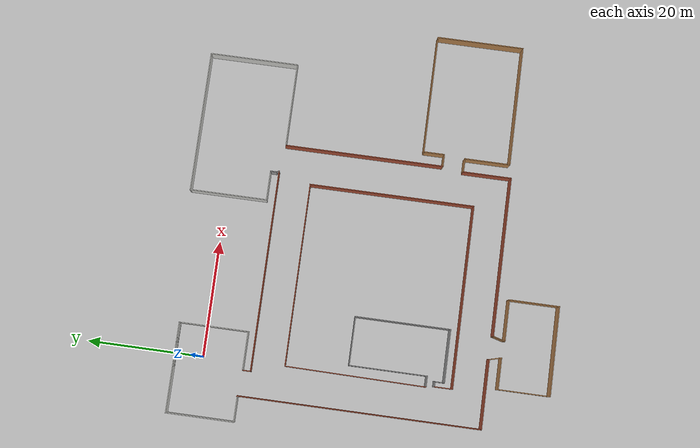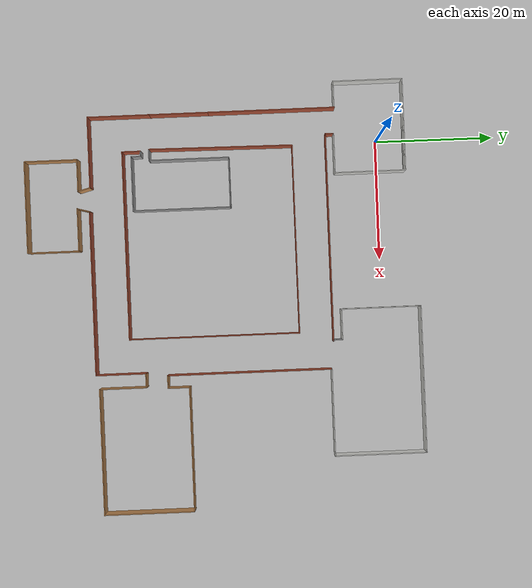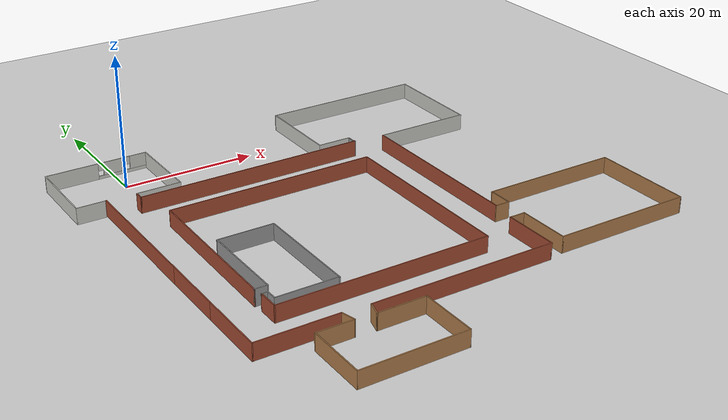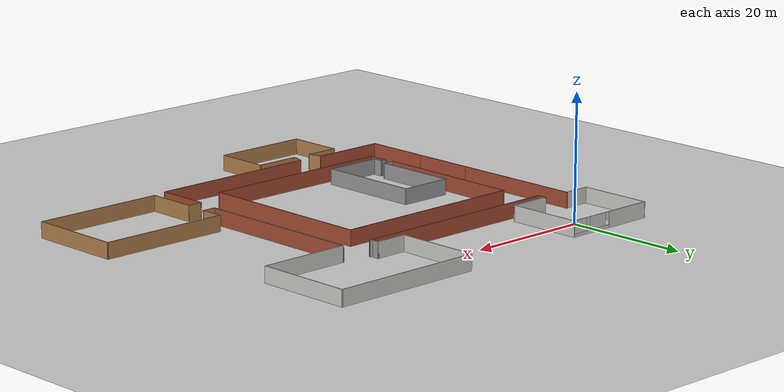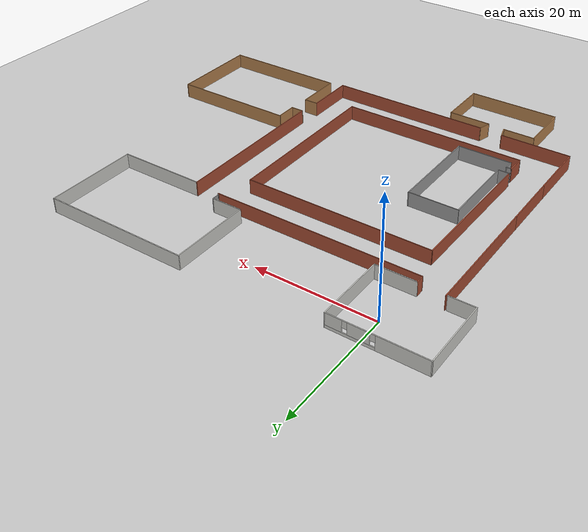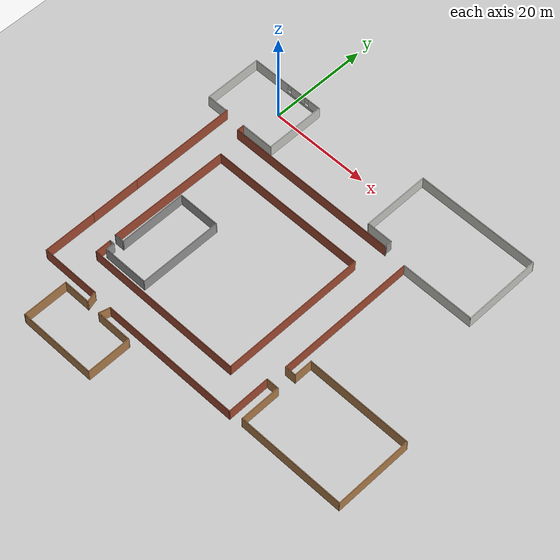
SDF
<?xml version="1.0"?>
<sdf version="1.6">
  <world name="lab_world">
    <gravity>0 0 -9.8</gravity>

    <include>
      <uri>model://ground_plane</uri>
    </include>

    <include>
      <uri>model://sun</uri>
    </include>

    <include>
      <name>lab_building</name>
      <uri>model://lab_building</uri>
    </include>
  </world>
</sdf>

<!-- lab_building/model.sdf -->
<sdf version='1.7'>
  <model name='lab_building'>
    <pose>25.4935 -26.5175 0 0 -0 0</pose>
    <link name='Wall_10'>
      <collision name='Wall_10_Collision'>
        <geometry>
          <box>
            <size>4.25 0.15 2.5</size>
          </box>
        </geometry>
        <pose>0 0 1.25 0 -0 0</pose>
      </collision>
      <visual name='Wall_10_Visual'>
        <pose>0 0 1.25 0 -0 0</pose>
        <geometry>
          <box>
            <size>4.25 0.15 2.5</size>
          </box>
        </geometry>
        <material>
          <script>
            <uri>file://media/materials/scripts/gazebo.material</uri>
            <name>Gazebo/CeilingTiled</name>
          </script>
          <ambient>1 1 1 1</ambient>
        </material>
        <meta>
          <layer>0</layer>
        </meta>
      </visual>
      <pose>-33.5705 19.5683 0 0 -0 0</pose>
    </link>
    <link name='Wall_13'>
      <collision name='Wall_13_Collision'>
        <geometry>
          <box>
            <size>6.75 0.15 2.5</size>
          </box>
        </geometry>
        <pose>0 0 1.25 0 -0 0</pose>
      </collision>
      <visual name='Wall_13_Visual'>
        <pose>0 0 1.25 0 -0 0</pose>
        <geometry>
          <box>
            <size>6.75 0.15 2.5</size>
          </box>
        </geometry>
        <material>
          <script>
            <uri>file://media/materials/scripts/gazebo.material</uri>
            <name>Gazebo/CeilingTiled</name>
          </script>
          <ambient>1 1 1 1</ambient>
        </material>
        <meta>
          <layer>0</layer>
        </meta>
      </visual>
      <pose>-23.5705 19.3183 0 0 -0 3.14159</pose>
    </link>
    <link name='Wall_14'>
      <collision name='Wall_14_Collision'>
        <geometry>
          <box>
            <size>1.5 0.15 2.5</size>
          </box>
        </geometry>
        <pose>0 0 1.25 0 -0 0</pose>
      </collision>
      <visual name='Wall_14_Visual'>
        <pose>0 0 1.25 0 -0 0</pose>
        <geometry>
          <box>
            <size>1.5 0.15 2.5</size>
          </box>
        </geometry>
        <material>
          <script>
            <uri>file://media/materials/scripts/gazebo.material</uri>
            <name>Gazebo/Bricks</name>
          </script>
          <ambient>1 1 1 1</ambient>
        </material>
        <meta>
          <layer>0</layer>
        </meta>
      </visual>
      <pose>-26.8705 18.6433 0 0 -0 -1.5708</pose>
    </link>
    <link name='Wall_15'>
      <collision name='Wall_15_Collision'>
        <geometry>
          <box>
            <size>35 0.15 2.5</size>
          </box>
        </geometry>
        <pose>0 0 1.25 0 -0 0</pose>
      </collision>
      <visual name='Wall_15_Visual'>
        <pose>0 0 1.25 0 -0 0</pose>
        <geometry>
          <box>
            <size>35 0.15 2.5</size>
          </box>
        </geometry>
        <material>
          <script>
            <uri>file://media/materials/scripts/gazebo.material</uri>
            <name>Gazebo/Bricks</name>
          </script>
          <ambient>1 1 1 1</ambient>
        </material>
        <meta>
          <layer>0</layer>
        </meta>
      </visual>
      <pose>-9.44554 17.9683 0 0 -0 0</pose>
    </link>
    <link name='Wall_17'>
      <collision name='Wall_17_Collision'>
        <geometry>
          <box>
            <size>21.5 0.15 2.5</size>
          </box>
        </geometry>
        <pose>0 0 1.25 0 -0 0</pose>
      </collision>
      <visual name='Wall_17_Visual'>
        <pose>0 0 1.25 0 -0 0</pose>
        <geometry>
          <box>
            <size>21.5 0.15 2.5</size>
          </box>
        </geometry>
        <material>
          <script>
            <uri>file://media/materials/scripts/gazebo.material</uri>
            <name>Gazebo/Bricks</name>
          </script>
          <ambient>1 1 1 1</ambient>
        </material>
        <meta>
          <layer>0</layer>
        </meta>
      </visual>
      <pose>-31.2665 8.96422 0 0 -0 -1.5708</pose>
    </link>
    <link name='Wall_18'>
      <collision name='Wall_18_Collision'>
        <geometry>
          <box>
            <size>10 0.15 2.5</size>
          </box>
        </geometry>
        <pose>0 0 1.25 0 -0 0</pose>
      </collision>
      <visual name='Wall_18_Visual'>
        <pose>0 0 1.25 0 -0 0</pose>
        <geometry>
          <box>
            <size>10 0.15 2.5</size>
          </box>
        </geometry>
        <material>
          <script>
            <uri>file://media/materials/scripts/gazebo.material</uri>
            <name>Gazebo/Bricks</name>
          </script>
          <ambient>1 1 1 1</ambient>
        </material>
        <meta>
          <layer>0</layer>
        </meta>
      </visual>
      <pose>-31.2665 -6.63578 0 0 -0 -1.5708</pose>
    </link>
    <link name='Wall_19'>
      <collision name='Wall_19_Collision'>
        <geometry>
          <box>
            <size>10.5 0.15 2.5</size>
          </box>
        </geometry>
        <pose>0 0 1.25 0 -0 0</pose>
      </collision>
      <visual name='Wall_19_Visual'>
        <pose>0 0 1.25 0 -0 0</pose>
        <geometry>
          <box>
            <size>10.5 0.15 2.5</size>
          </box>
        </geometry>
        <material>
          <script>
            <uri>file://media/materials/scripts/gazebo.material</uri>
            <name>Gazebo/Bricks</name>
          </script>
          <ambient>1 1 1 1</ambient>
        </material>
        <meta>
          <layer>0</layer>
        </meta>
      </visual>
      <pose>-31.2665 -16.7358 0 0 -0 -1.5708</pose>
    </link>
    <link name='Wall_20'>
      <collision name='Wall_20_Collision'>
        <geometry>
          <box>
            <size>12 0.15 2.5</size>
          </box>
        </geometry>
        <pose>0 0 1.25 0 -0 0</pose>
      </collision>
      <visual name='Wall_20_Visual'>
        <pose>0 0 1.25 0 -0 0</pose>
        <geometry>
          <box>
            <size>12 0.15 2.5</size>
          </box>
        </geometry>
        <material>
          <script>
            <uri>file://media/materials/scripts/gazebo.material</uri>
            <name>Gazebo/Bricks</name>
          </script>
          <ambient>1 1 1 1</ambient>
        </material>
        <meta>
          <layer>0</layer>
        </meta>
      </visual>
      <pose>-25.3415 -21.9108 0 0 -0 0</pose>
    </link>
    <link name='Wall_21'>
      <collision name='Wall_21_Collision'>
        <geometry>
          <box>
            <size>2.25 0.15 2.5</size>
          </box>
        </geometry>
        <pose>0 0 1.25 0 -0 0</pose>
      </collision>
      <visual name='Wall_21_Visual'>
        <pose>0 0 1.25 0 -0 0</pose>
        <geometry>
          <box>
            <size>2.25 0.15 2.5</size>
          </box>
        </geometry>
        <material>
          <script>
            <uri>file://media/materials/scripts/gazebo.material</uri>
            <name>Gazebo/Wood</name>
          </script>
          <ambient>1 1 1 1</ambient>
        </material>
        <meta>
          <layer>0</layer>
        </meta>
      </visual>
      <pose>-19.1447 -22.925 0 0 -0 -1.309</pose>
    </link>
    <link name='Wall_22'>
      <collision name='Wall_22_Collision'>
        <geometry>
          <box>
            <size>5.5 0.15 2.5</size>
          </box>
        </geometry>
        <pose>0 0 1.25 0 -0 0</pose>
      </collision>
      <visual name='Wall_22_Visual'>
        <pose>0 0 1.25 0 -0 0</pose>
        <geometry>
          <box>
            <size>5.5 0.15 2.5</size>
          </box>
        </geometry>
        <material>
          <script>
            <uri>file://media/materials/scripts/gazebo.material</uri>
            <name>Gazebo/Wood</name>
          </script>
          <ambient>1 1 1 1</ambient>
        </material>
        <meta>
          <layer>0</layer>
        </meta>
      </visual>
      <pose>-21.548 -23.9392 0 0 -0 3.14159</pose>
    </link>
    <link name='Wall_23'>
      <collision name='Wall_23_Collision'>
        <geometry>
          <box>
            <size>9 0.15 2.5</size>
          </box>
        </geometry>
        <pose>0 0 1.25 0 -0 0</pose>
      </collision>
      <visual name='Wall_23_Visual'>
        <pose>0 0 1.25 0 -0 0</pose>
        <geometry>
          <box>
            <size>9 0.15 2.5</size>
          </box>
        </geometry>
        <material>
          <script>
            <uri>file://media/materials/scripts/gazebo.material</uri>
            <name>Gazebo/Wood</name>
          </script>
          <ambient>1 1 1 1</ambient>
        </material>
        <meta>
          <layer>0</layer>
        </meta>
      </visual>
      <pose>-24.223 -28.3642 0 0 -0 -1.5708</pose>
    </link>
    <link name='Wall_24'>
      <collision name='Wall_24_Collision'>
        <geometry>
          <box>
            <size>15.5 0.15 2.5</size>
          </box>
        </geometry>
        <pose>0 0 1.25 0 -0 0</pose>
      </collision>
      <visual name='Wall_24_Visual'>
        <pose>0 0 1.25 0 -0 0</pose>
        <geometry>
          <box>
            <size>15.5 0.15 2.5</size>
          </box>
        </geometry>
        <material>
          <script>
            <uri>file://media/materials/scripts/gazebo.material</uri>
            <name>Gazebo/Wood</name>
          </script>
          <ambient>1 1 1 1</ambient>
        </material>
        <meta>
          <layer>0</layer>
        </meta>
      </visual>
      <pose>-16.548 -32.7892 0 0 -0 0</pose>
    </link>
    <link name='Wall_25'>
      <collision name='Wall_25_Collision'>
        <geometry>
          <box>
            <size>8.75 0.15 2.5</size>
          </box>
        </geometry>
        <pose>0 0 1.25 0 -0 0</pose>
      </collision>
      <visual name='Wall_25_Visual'>
        <pose>0 0 1.25 0 -0 0</pose>
        <geometry>
          <box>
            <size>8.75 0.15 2.5</size>
          </box>
        </geometry>
        <material>
          <script>
            <uri>file://media/materials/scripts/gazebo.material</uri>
            <name>Gazebo/Wood</name>
          </script>
          <ambient>1 1 1 1</ambient>
        </material>
        <meta>
          <layer>0</layer>
        </meta>
      </visual>
      <pose>-8.87298 -28.4892 0 0 -0 1.5708</pose>
    </link>
    <link name='Wall_3'>
      <pose>-27.9455 31.1683 0 0 -0 0</pose>
      <visual name='Wall_3_Visual_0'>
        <pose>-3.78332 0 1.25 0 -0 0</pose>
        <geometry>
          <box>
            <size>7.93335 0.15 2.5</size>
          </box>
        </geometry>
        <material>
          <script>
            <uri>file://media/materials/scripts/gazebo.material</uri>
            <name>Gazebo/CeilingTiled</name>
          </script>
          <ambient>1 1 1 1</ambient>
        </material>
        <meta>
          <layer>0</layer>
        </meta>
      </visual>
      <collision name='Wall_3_Collision_0'>
        <geometry>
          <box>
            <size>7.93335 0.15 2.5</size>
          </box>
        </geometry>
        <pose>-3.78332 0 1.25 0 -0 0</pose>
      </collision>
      <visual name='Wall_3_Visual_1'>
        <pose>3.96668 0 0.25 0 -0 0</pose>
        <geometry>
          <box>
            <size>7.56665 0.15 0.5</size>
          </box>
        </geometry>
        <material>
          <script>
            <uri>file://media/materials/scripts/gazebo.material</uri>
            <name>Gazebo/CeilingTiled</name>
          </script>
          <ambient>1 1 1 1</ambient>
        </material>
        <meta>
          <layer>0</layer>
        </meta>
      </visual>
      <collision name='Wall_3_Collision_1'>
        <geometry>
          <box>
            <size>7.56665 0.15 0.5</size>
          </box>
        </geometry>
        <pose>3.96668 0 0.25 0 -0 0</pose>
      </collision>
      <visual name='Wall_3_Visual_2'>
        <pose>2.63653 0 1.5 0 -0 0</pose>
        <geometry>
          <box>
            <size>3.30636 0.15 2</size>
          </box>
        </geometry>
        <material>
          <script>
            <uri>file://media/materials/scripts/gazebo.material</uri>
            <name>Gazebo/CeilingTiled</name>
          </script>
          <ambient>1 1 1 1</ambient>
        </material>
        <meta>
          <layer>0</layer>
        </meta>
      </visual>
      <collision name='Wall_3_Collision_2'>
        <geometry>
          <box>
            <size>3.30636 0.15 2</size>
          </box>
        </geometry>
        <pose>2.63653 0 1.5 0 -0 0</pose>
      </collision>
      <visual name='Wall_3_Visual_3'>
        <pose>6.41986 0 1.5 0 -0 0</pose>
        <geometry>
          <box>
            <size>2.66029 0.15 2</size>
          </box>
        </geometry>
        <material>
          <script>
            <uri>file://media/materials/scripts/gazebo.material</uri>
            <name>Gazebo/CeilingTiled</name>
          </script>
          <ambient>1 1 1 1</ambient>
        </material>
        <meta>
          <layer>0</layer>
        </meta>
      </visual>
      <collision name='Wall_3_Collision_3'>
        <geometry>
          <box>
            <size>2.66029 0.15 2</size>
          </box>
        </geometry>
        <pose>6.41986 0 1.5 0 -0 0</pose>
      </collision>
      <visual name='Wall_3_Visual_4'>
        <pose>0.583351 0 1.9 0 -0 0</pose>
        <geometry>
          <box>
            <size>0.8 0.15 1.2</size>
          </box>
        </geometry>
        <material>
          <script>
            <uri>file://media/materials/scripts/gazebo.material</uri>
            <name>Gazebo/CeilingTiled</name>
          </script>
          <ambient>1 1 1 1</ambient>
        </material>
        <meta>
          <layer>0</layer>
        </meta>
      </visual>
      <collision name='Wall_3_Collision_4'>
        <geometry>
          <box>
            <size>0.8 0.15 1.2</size>
          </box>
        </geometry>
        <pose>0.583351 0 1.9 0 -0 0</pose>
      </collision>
      <visual name='Wall_3_Visual_5'>
        <pose>4.68971 0 1.9 0 -0 0</pose>
        <geometry>
          <box>
            <size>0.8 0.15 1.2</size>
          </box>
        </geometry>
        <material>
          <script>
            <uri>file://media/materials/scripts/gazebo.material</uri>
            <name>Gazebo/CeilingTiled</name>
          </script>
          <ambient>1 1 1 1</ambient>
        </material>
        <meta>
          <layer>0</layer>
        </meta>
      </visual>
      <collision name='Wall_3_Collision_5'>
        <geometry>
          <box>
            <size>0.8 0.15 1.2</size>
          </box>
        </geometry>
        <pose>4.68971 0 1.9 0 -0 0</pose>
      </collision>
    </link>
    <link name='Wall_4'>
      <collision name='Wall_4_Collision'>
        <geometry>
          <box>
            <size>12 0.15 2.5</size>
          </box>
        </geometry>
        <pose>0 0 1.25 0 -0 0</pose>
      </collision>
      <visual name='Wall_4_Visual'>
        <pose>0 0 1.25 0 -0 0</pose>
        <geometry>
          <box>
            <size>12 0.15 2.5</size>
          </box>
        </geometry>
        <material>
          <script>
            <uri>file://media/materials/scripts/gazebo.material</uri>
            <name>Gazebo/CeilingTiled</name>
          </script>
          <ambient>1 1 1 1</ambient>
        </material>
        <meta>
          <layer>0</layer>
        </meta>
      </visual>
      <pose>-20.2705 25.2433 0 0 -0 -1.5708</pose>
    </link>
    <link name='Wall_59'>
      <collision name='Wall_59_Collision'>
        <geometry>
          <box>
            <size>7.25 0.15 2.5</size>
          </box>
        </geometry>
        <pose>0 0 1.25 0 -0 0</pose>
      </collision>
      <visual name='Wall_59_Visual'>
        <pose>0 0 1.25 0 -0 0</pose>
        <geometry>
          <box>
            <size>7.25 0.15 2.5</size>
          </box>
        </geometry>
        <material>
          <script>
            <uri>file://media/materials/scripts/gazebo.material</uri>
            <name>Gazebo/Wood</name>
          </script>
          <ambient>1 1 1 1</ambient>
        </material>
        <meta>
          <layer>0</layer>
        </meta>
      </visual>
      <pose>-12.423 -24.1892 0 0 -0 3.14159</pose>
    </link>
    <link name='Wall_60'>
      <collision name='Wall_60_Collision'>
        <geometry>
          <box>
            <size>2.25 0.15 2.5</size>
          </box>
        </geometry>
        <pose>0 0 1.25 0 -0 0</pose>
      </collision>
      <visual name='Wall_60_Visual'>
        <pose>0 0 1.25 0 -0 0</pose>
        <geometry>
          <box>
            <size>2.25 0.15 2.5</size>
          </box>
        </geometry>
        <material>
          <script>
            <uri>file://media/materials/scripts/gazebo.material</uri>
            <name>Gazebo/Wood</name>
          </script>
          <ambient>1 1 1 1</ambient>
        </material>
        <meta>
          <layer>0</layer>
        </meta>
      </visual>
      <pose>-15.7012 -23.175 0 0 -0 1.309</pose>
    </link>
    <link name='Wall_61'>
      <collision name='Wall_61_Collision'>
        <geometry>
          <box>
            <size>27.75 0.15 2.5</size>
          </box>
        </geometry>
        <pose>0 0 1.25 0 -0 0</pose>
      </collision>
      <visual name='Wall_61_Visual'>
        <pose>0 0 1.25 0 -0 0</pose>
        <geometry>
          <box>
            <size>27.75 0.15 2.5</size>
          </box>
        </geometry>
        <material>
          <script>
            <uri>file://media/materials/scripts/gazebo.material</uri>
            <name>Gazebo/Bricks</name>
          </script>
          <ambient>1 1 1 1</ambient>
        </material>
        <meta>
          <layer>0</layer>
        </meta>
      </visual>
      <pose>-1.62946 -22.1608 0 0 -0 0</pose>
    </link>
    <link name='Wall_62'>
      <collision name='Wall_62_Collision'>
        <geometry>
          <box>
            <size>8.5 0.15 2.5</size>
          </box>
        </geometry>
        <pose>0 0 1.25 0 -0 0</pose>
      </collision>
      <visual name='Wall_62_Visual'>
        <pose>0 0 1.25 0 -0 0</pose>
        <geometry>
          <box>
            <size>8.5 0.15 2.5</size>
          </box>
        </geometry>
        <material>
          <script>
            <uri>file://media/materials/scripts/gazebo.material</uri>
            <name>Gazebo/Bricks</name>
          </script>
          <ambient>1 1 1 1</ambient>
        </material>
        <meta>
          <layer>0</layer>
        </meta>
      </visual>
      <pose>12.1705 -17.9858 0 0 -0 1.5708</pose>
    </link>
    <link name='Wall_63'>
      <collision name='Wall_63_Collision'>
        <geometry>
          <box>
            <size>2.5 0.15 2.5</size>
          </box>
        </geometry>
        <pose>0 0 1.25 0 -0 0</pose>
      </collision>
      <visual name='Wall_63_Visual'>
        <pose>0 0 1.25 0 -0 0</pose>
        <geometry>
          <box>
            <size>2.5 0.15 2.5</size>
          </box>
        </geometry>
        <material>
          <script>
            <uri>file://media/materials/scripts/gazebo.material</uri>
            <name>Gazebo/Wood</name>
          </script>
          <ambient>1 1 1 1</ambient>
        </material>
        <meta>
          <layer>0</layer>
        </meta>
      </visual>
      <pose>13.3455 -13.8108 0 0 -0 0</pose>
    </link>
    <link name='Wall_64'>
      <collision name='Wall_64_Collision'>
        <geometry>
          <box>
            <size>8 0.15 2.5</size>
          </box>
        </geometry>
        <pose>0 0 1.25 0 -0 0</pose>
      </collision>
      <visual name='Wall_64_Visual'>
        <pose>0 0 1.25 0 -0 0</pose>
        <geometry>
          <box>
            <size>8 0.15 2.5</size>
          </box>
        </geometry>
        <material>
          <script>
            <uri>file://media/materials/scripts/gazebo.material</uri>
            <name>Gazebo/Wood</name>
          </script>
          <ambient>1 1 1 1</ambient>
        </material>
        <meta>
          <layer>0</layer>
        </meta>
      </visual>
      <pose>14.5205 -17.7358 0 0 -0 -1.5708</pose>
    </link>
    <link name='Wall_65'>
      <collision name='Wall_65_Collision'>
        <geometry>
          <box>
            <size>21.25 0.15 2.5</size>
          </box>
        </geometry>
        <pose>0 0 1.25 0 -0 0</pose>
      </collision>
      <visual name='Wall_65_Visual'>
        <pose>0 0 1.25 0 -0 0</pose>
        <geometry>
          <box>
            <size>21.25 0.15 2.5</size>
          </box>
        </geometry>
        <material>
          <script>
            <uri>file://media/materials/scripts/gazebo.material</uri>
            <name>Gazebo/Wood</name>
          </script>
          <ambient>1 1 1 1</ambient>
        </material>
        <meta>
          <layer>0</layer>
        </meta>
      </visual>
      <pose>25.0705 -21.6608 0 0 -0 0</pose>
    </link>
    <link name='Wall_66'>
      <collision name='Wall_66_Collision'>
        <geometry>
          <box>
            <size>15.25 0.15 2.5</size>
          </box>
        </geometry>
        <pose>0 0 1.25 0 -0 0</pose>
      </collision>
      <visual name='Wall_66_Visual'>
        <pose>0 0 1.25 0 -0 0</pose>
        <geometry>
          <box>
            <size>15.25 0.15 2.5</size>
          </box>
        </geometry>
        <material>
          <script>
            <uri>file://media/materials/scripts/gazebo.material</uri>
            <name>Gazebo/Wood</name>
          </script>
          <ambient>1 1 1 1</ambient>
        </material>
        <meta>
          <layer>0</layer>
        </meta>
      </visual>
      <pose>35.6205 -14.1108 0 0 -0 1.5708</pose>
    </link>
    <link name='Wall_67'>
      <collision name='Wall_67_Collision'>
        <geometry>
          <box>
            <size>21 0.15 2.5</size>
          </box>
        </geometry>
        <pose>0 0 1.25 0 -0 0</pose>
      </collision>
      <visual name='Wall_67_Visual'>
        <pose>0 0 1.25 0 -0 0</pose>
        <geometry>
          <box>
            <size>21 0.15 2.5</size>
          </box>
        </geometry>
        <material>
          <script>
            <uri>file://media/materials/scripts/gazebo.material</uri>
            <name>Gazebo/Wood</name>
          </script>
          <ambient>1 1 1 1</ambient>
        </material>
        <meta>
          <layer>0</layer>
        </meta>
      </visual>
      <pose>25.1955 -6.56078 0 0 -0 3.14159</pose>
    </link>
    <link name='Wall_68'>
      <collision name='Wall_68_Collision'>
        <geometry>
          <box>
            <size>3.75 0.15 2.5</size>
          </box>
        </geometry>
        <pose>0 0 1.25 0 -0 0</pose>
      </collision>
      <visual name='Wall_68_Visual'>
        <pose>0 0 1.25 0 -0 0</pose>
        <geometry>
          <box>
            <size>3.75 0.15 2.5</size>
          </box>
        </geometry>
        <material>
          <script>
            <uri>file://media/materials/scripts/gazebo.material</uri>
            <name>Gazebo/Wood</name>
          </script>
          <ambient>1 1 1 1</ambient>
        </material>
        <meta>
          <layer>0</layer>
        </meta>
      </visual>
      <pose>14.7705 -8.36078 0 0 -0 -1.5708</pose>
    </link>
    <link name='Wall_69'>
      <collision name='Wall_69_Collision'>
        <geometry>
          <box>
            <size>2.25 0.15 2.5</size>
          </box>
        </geometry>
        <pose>0 0 1.25 0 -0 0</pose>
      </collision>
      <visual name='Wall_69_Visual'>
        <pose>0 0 1.25 0 -0 0</pose>
        <geometry>
          <box>
            <size>2.25 0.15 2.5</size>
          </box>
        </geometry>
        <material>
          <script>
            <uri>file://media/materials/scripts/gazebo.material</uri>
            <name>Gazebo/Wood</name>
          </script>
          <ambient>1 1 1 1</ambient>
        </material>
        <meta>
          <layer>0</layer>
        </meta>
      </visual>
      <pose>13.7205 -10.1608 0 0 -0 3.14159</pose>
    </link>
    <link name='Wall_70'>
      <collision name='Wall_70_Collision'>
        <geometry>
          <box>
            <size>27.75 0.15 2.5</size>
          </box>
        </geometry>
        <pose>0 0 1.25 0 -0 0</pose>
      </collision>
      <visual name='Wall_70_Visual'>
        <pose>0 0 1.25 0 -0 0</pose>
        <geometry>
          <box>
            <size>27.75 0.15 2.5</size>
          </box>
        </geometry>
        <material>
          <script>
            <uri>file://media/materials/scripts/gazebo.material</uri>
            <name>Gazebo/Bricks</name>
          </script>
          <ambient>1 1 1 1</ambient>
        </material>
        <meta>
          <layer>0</layer>
        </meta>
      </visual>
      <pose>12.6705 3.63922 0 0 -0 1.5708</pose>
    </link>
    <link name='Wall_71'>
      <collision name='Wall_71_Collision'>
        <geometry>
          <box>
            <size>14.75 0.15 2.5</size>
          </box>
        </geometry>
        <pose>0 0 1.25 0 -0 0</pose>
      </collision>
      <visual name='Wall_71_Visual'>
        <pose>0 0 1.25 0 -0 0</pose>
        <geometry>
          <box>
            <size>14.75 0.15 2.5</size>
          </box>
        </geometry>
        <material>
          <script>
            <uri>file://media/materials/scripts/gazebo.material</uri>
            <name>Gazebo/CeilingTiled</name>
          </script>
          <ambient>1 1 1 1</ambient>
        </material>
        <meta>
          <layer>0</layer>
        </meta>
      </visual>
      <pose>19.9705 17.4392 0 0 -0 0</pose>
    </link>
    <link name='Wall_72'>
      <collision name='Wall_72_Collision'>
        <geometry>
          <box>
            <size>15.5 0.15 2.5</size>
          </box>
        </geometry>
        <pose>0 0 1.25 0 -0 0</pose>
      </collision>
      <visual name='Wall_72_Visual'>
        <pose>0 0 1.25 0 -0 0</pose>
        <geometry>
          <box>
            <size>15.5 0.15 2.5</size>
          </box>
        </geometry>
        <material>
          <script>
            <uri>file://media/materials/scripts/gazebo.material</uri>
            <name>Gazebo/CeilingTiled</name>
          </script>
          <ambient>1 1 1 1</ambient>
        </material>
        <meta>
          <layer>0</layer>
        </meta>
      </visual>
      <pose>27.2705 25.1142 0 0 -0 1.5708</pose>
    </link>
    <link name='Wall_73'>
      <collision name='Wall_73_Collision'>
        <geometry>
          <box>
            <size>24.75 0.15 2.5</size>
          </box>
        </geometry>
        <pose>0 0 1.25 0 -0 0</pose>
      </collision>
      <visual name='Wall_73_Visual'>
        <pose>0 0 1.25 0 -0 0</pose>
        <geometry>
          <box>
            <size>24.75 0.15 2.5</size>
          </box>
        </geometry>
        <material>
          <script>
            <uri>file://media/materials/scripts/gazebo.material</uri>
            <name>Gazebo/CeilingTiled</name>
          </script>
          <ambient>1 1 1 1</ambient>
        </material>
        <meta>
          <layer>0</layer>
        </meta>
      </visual>
      <pose>14.9705 32.7892 0 0 -0 3.14159</pose>
    </link>
    <link name='Wall_74'>
      <collision name='Wall_74_Collision'>
        <geometry>
          <box>
            <size>13.5 0.15 2.5</size>
          </box>
        </geometry>
        <pose>0 0 1.25 0 -0 0</pose>
      </collision>
      <visual name='Wall_74_Visual'>
        <pose>0 0 1.25 0 -0 0</pose>
        <geometry>
          <box>
            <size>13.5 0.15 2.5</size>
          </box>
        </geometry>
        <material>
          <script>
            <uri>file://media/materials/scripts/gazebo.material</uri>
            <name>Gazebo/CeilingTiled</name>
          </script>
          <ambient>1 1 1 1</ambient>
        </material>
        <meta>
          <layer>0</layer>
        </meta>
      </visual>
      <pose>2.67054 26.1142 0 0 -0 -1.5708</pose>
    </link>
    <link name='Wall_75'>
      <collision name='Wall_75_Collision'>
        <geometry>
          <box>
            <size>5.25 0.15 2.5</size>
          </box>
        </geometry>
        <pose>0 0 1.25 0 -0 0</pose>
      </collision>
      <visual name='Wall_75_Visual'>
        <pose>0 0 1.25 0 -0 0</pose>
        <geometry>
          <box>
            <size>5.25 0.15 2.5</size>
          </box>
        </geometry>
        <material>
          <script>
            <uri>file://media/materials/scripts/gazebo.material</uri>
            <name>Gazebo/CeilingTiled</name>
          </script>
          <ambient>1 1 1 1</ambient>
        </material>
        <meta>
          <layer>0</layer>
        </meta>
      </visual>
      <pose>5.22054 19.4392 0 0 -0 0</pose>
    </link>
    <link name='Wall_76'>
      <collision name='Wall_76_Collision'>
        <geometry>
          <box>
            <size>1.25 0.15 2.5</size>
          </box>
        </geometry>
        <pose>0 0 1.25 0 -0 0</pose>
      </collision>
      <visual name='Wall_76_Visual'>
        <pose>0 0 1.25 0 -0 0</pose>
        <geometry>
          <box>
            <size>1.25 0.15 2.5</size>
          </box>
        </geometry>
        <material>
          <script>
            <uri>file://media/materials/scripts/gazebo.material</uri>
            <name>Gazebo/Grey</name>
          </script>
          <ambient>1 1 1 1</ambient>
        </material>
        <meta>
          <layer>0</layer>
        </meta>
      </visual>
      <pose>7.77054 18.8892 0 0 -0 -1.5708</pose>
    </link>
    <link name='Wall_77'>
      <collision name='Wall_77_Collision'>
        <geometry>
          <box>
            <size>0.57575 0.15 2.5</size>
          </box>
        </geometry>
        <pose>0 0 1.25 0 -0 0</pose>
      </collision>
      <visual name='Wall_77_Visual'>
        <pose>0 0 1.25 0 -0 0</pose>
        <geometry>
          <box>
            <size>0.57575 0.15 2.5</size>
          </box>
        </geometry>
        <material>
          <script>
            <uri>file://media/materials/scripts/gazebo.material</uri>
            <name>Gazebo/Grey</name>
          </script>
          <ambient>1 1 1 1</ambient>
        </material>
        <meta>
          <layer>0</layer>
        </meta>
      </visual>
      <pose>7.875 18.1537 0 0 -0 -1.05789</pose>
    </link>
    <link name='Wall_79'>
      <collision name='Wall_79_Collision'>
        <geometry>
          <box>
            <size>31.75 0.15 2.5</size>
          </box>
        </geometry>
        <pose>0 0 1.25 0 -0 0</pose>
      </collision>
      <visual name='Wall_79_Visual'>
        <pose>0 0 1.25 0 -0 0</pose>
        <geometry>
          <box>
            <size>31.75 0.15 2.5</size>
          </box>
        </geometry>
        <material>
          <script>
            <uri>file://media/materials/scripts/gazebo.material</uri>
            <name>Gazebo/Bricks</name>
          </script>
          <ambient>1 1 1 1</ambient>
        </material>
        <meta>
          <layer>0</layer>
        </meta>
      </visual>
      <pose>-9.4099 12.2887 0 0 -0 0</pose>
    </link>
    <link name='Wall_80'>
      <collision name='Wall_80_Collision'>
        <geometry>
          <box>
            <size>28.75 0.15 2.5</size>
          </box>
        </geometry>
        <pose>0 0 1.25 0 -0 0</pose>
      </collision>
      <visual name='Wall_80_Visual'>
        <pose>0 0 1.25 0 -0 0</pose>
        <geometry>
          <box>
            <size>28.75 0.15 2.5</size>
          </box>
        </geometry>
        <material>
          <script>
            <uri>file://media/materials/scripts/gazebo.material</uri>
            <name>Gazebo/Bricks</name>
          </script>
          <ambient>1 1 1 1</ambient>
        </material>
        <meta>
          <layer>0</layer>
        </meta>
      </visual>
      <pose>6.39009 -2.01131 0 0 -0 -1.5708</pose>
    </link>
    <link name='Wall_81'>
      <collision name='Wall_81_Collision'>
        <geometry>
          <box>
            <size>31.75 0.15 2.5</size>
          </box>
        </geometry>
        <pose>0 0 1.25 0 -0 0</pose>
      </collision>
      <visual name='Wall_81_Visual'>
        <pose>0 0 1.25 0 -0 0</pose>
        <geometry>
          <box>
            <size>31.75 0.15 2.5</size>
          </box>
        </geometry>
        <material>
          <script>
            <uri>file://media/materials/scripts/gazebo.material</uri>
            <name>Gazebo/Bricks</name>
          </script>
          <ambient>1 1 1 1</ambient>
        </material>
        <meta>
          <layer>0</layer>
        </meta>
      </visual>
      <pose>-9.4099 -16.3113 0 0 -0 3.14159</pose>
    </link>
    <link name='Wall_82'>
      <collision name='Wall_82_Collision'>
        <geometry>
          <box>
            <size>3.25 0.15 2.5</size>
          </box>
        </geometry>
        <pose>0 0 1.25 0 -0 0</pose>
      </collision>
      <visual name='Wall_82_Visual'>
        <pose>0 0 1.25 0 -0 0</pose>
        <geometry>
          <box>
            <size>3.25 0.15 2.5</size>
          </box>
        </geometry>
        <material>
          <script>
            <uri>file://media/materials/scripts/gazebo.material</uri>
            <name>Gazebo/Bricks</name>
          </script>
          <ambient>1 1 1 1</ambient>
        </material>
        <meta>
          <layer>0</layer>
        </meta>
      </visual>
      <pose>-25.2099 -14.7613 0 0 -0 1.5708</pose>
    </link>
    <link name='Wall_83'>
      <collision name='Wall_83_Collision'>
        <geometry>
          <box>
            <size>1 0.15 2.5</size>
          </box>
        </geometry>
        <pose>0 0 1.25 0 -0 0</pose>
      </collision>
      <visual name='Wall_83_Visual'>
        <pose>0 0 1.25 0 -0 0</pose>
        <geometry>
          <box>
            <size>1 0.15 2.5</size>
          </box>
        </geometry>
        <material>
          <script>
            <uri>file://media/materials/scripts/gazebo.material</uri>
            <name>Gazebo/Grey</name>
          </script>
          <ambient>1 1 1 1</ambient>
        </material>
        <meta>
          <layer>0</layer>
        </meta>
      </visual>
      <pose>-24.7849 -13.2113 0 0 -0 0</pose>
    </link>
    <link name='Wall_84'>
      <collision name='Wall_84_Collision'>
        <geometry>
          <box>
            <size>1.75 0.15 2.5</size>
          </box>
        </geometry>
        <pose>0 0 1.25 0 -0 0</pose>
      </collision>
      <visual name='Wall_84_Visual'>
        <pose>0 0 1.25 0 -0 0</pose>
        <geometry>
          <box>
            <size>1.75 0.15 2.5</size>
          </box>
        </geometry>
        <material>
          <script>
            <uri>file://media/materials/scripts/gazebo.material</uri>
            <name>Gazebo/Grey</name>
          </script>
          <ambient>1 1 1 1</ambient>
        </material>
        <meta>
          <layer>0</layer>
        </meta>
      </visual>
      <pose>-24.3599 -14.0113 0 0 -0 -1.5708</pose>
    </link>
    <link name='Wall_85'>
      <collision name='Wall_85_Collision'>
        <geometry>
          <box>
            <size>9.25 0.15 2.5</size>
          </box>
        </geometry>
        <pose>0 0 1.25 0 -0 0</pose>
      </collision>
      <visual name='Wall_85_Visual'>
        <pose>0 0 1.25 0 -0 0</pose>
        <geometry>
          <box>
            <size>9.25 0.15 2.5</size>
          </box>
        </geometry>
        <material>
          <script>
            <uri>file://media/materials/scripts/gazebo.material</uri>
            <name>Gazebo/Grey</name>
          </script>
          <ambient>1 1 1 1</ambient>
        </material>
        <meta>
          <layer>0</layer>
        </meta>
      </visual>
      <pose>-19.8099 -14.8113 0 0 -0 0</pose>
    </link>
    <link name='Wall_86'>
      <collision name='Wall_86_Collision'>
        <geometry>
          <box>
            <size>16.5 0.15 2.5</size>
          </box>
        </geometry>
        <pose>0 0 1.25 0 -0 0</pose>
      </collision>
      <visual name='Wall_86_Visual'>
        <pose>0 0 1.25 0 -0 0</pose>
        <geometry>
          <box>
            <size>16.5 0.15 2.5</size>
          </box>
        </geometry>
        <material>
          <script>
            <uri>file://media/materials/scripts/gazebo.material</uri>
            <name>Gazebo/Grey</name>
          </script>
          <ambient>1 1 1 1</ambient>
        </material>
        <meta>
          <layer>0</layer>
        </meta>
      </visual>
      <pose>-15.2599 -6.63631 0 0 -0 1.5708</pose>
    </link>
    <link name='Wall_87'>
      <collision name='Wall_87_Collision'>
        <geometry>
          <box>
            <size>8.5 0.15 2.5</size>
          </box>
        </geometry>
        <pose>0 0 1.25 0 -0 0</pose>
      </collision>
      <visual name='Wall_87_Visual'>
        <pose>0 0 1.25 0 -0 0</pose>
        <geometry>
          <box>
            <size>8.5 0.15 2.5</size>
          </box>
        </geometry>
        <material>
          <script>
            <uri>file://media/materials/scripts/gazebo.material</uri>
            <name>Gazebo/Grey</name>
          </script>
          <ambient>1 1 1 1</ambient>
        </material>
        <meta>
          <layer>0</layer>
        </meta>
      </visual>
      <pose>-19.4349 1.53869 0 0 -0 3.14159</pose>
    </link>
    <link name='Wall_88'>
      <collision name='Wall_88_Collision'>
        <geometry>
          <box>
            <size>13.5 0.15 2.5</size>
          </box>
        </geometry>
        <pose>0 0 1.25 0 -0 0</pose>
      </collision>
      <visual name='Wall_88_Visual'>
        <pose>0 0 1.25 0 -0 0</pose>
        <geometry>
          <box>
            <size>13.5 0.15 2.5</size>
          </box>
        </geometry>
        <material>
          <script>
            <uri>file://media/materials/scripts/gazebo.material</uri>
            <name>Gazebo/Grey</name>
          </script>
          <ambient>1 1 1 1</ambient>
        </material>
        <meta>
          <layer>0</layer>
        </meta>
      </visual>
      <pose>-23.6099 -5.13631 0 0 -0 -1.5708</pose>
    </link>
    <link name='Wall_89'>
      <collision name='Wall_89_Collision'>
        <geometry>
          <box>
            <size>2 0.15 2.5</size>
          </box>
        </geometry>
        <pose>0 0 1.25 0 -0 0</pose>
      </collision>
      <visual name='Wall_89_Visual'>
        <pose>0 0 1.25 0 -0 0</pose>
        <geometry>
          <box>
            <size>2 0.15 2.5</size>
          </box>
        </geometry>
        <material>
          <script>
            <uri>file://media/materials/scripts/gazebo.material</uri>
            <name>Gazebo/Grey</name>
          </script>
          <ambient>1 1 1 1</ambient>
        </material>
        <meta>
          <layer>0</layer>
        </meta>
      </visual>
      <pose>-24.5349 -11.8113 0 0 -0 3.14159</pose>
    </link>
    <link name='Wall_9'>
      <collision name='Wall_9_Collision'>
        <geometry>
          <box>
            <size>11.75 0.15 2.5</size>
          </box>
        </geometry>
        <pose>0 0 1.25 0 -0 0</pose>
      </collision>
      <visual name='Wall_9_Visual'>
        <pose>0 0 1.25 0 -0 0</pose>
        <geometry>
          <box>
            <size>11.75 0.15 2.5</size>
          </box>
        </geometry>
        <material>
          <script>
            <uri>file://media/materials/scripts/gazebo.material</uri>
            <name>Gazebo/CeilingTiled</name>
          </script>
          <ambient>1 1 1 1</ambient>
        </material>
        <meta>
          <layer>0</layer>
        </meta>
      </visual>
      <pose>-35.6205 25.3683 0 0 -0 -1.5708</pose>
    </link>
    <link name='Wall_90'>
      <collision name='Wall_90_Collision'>
        <geometry>
          <box>
            <size>24.2513 0.15 2.5</size>
          </box>
        </geometry>
        <pose>0 0 1.25 0 -0 0</pose>
      </collision>
      <visual name='Wall_90_Visual'>
        <pose>0 0 1.25 0 -0 0</pose>
        <geometry>
          <box>
            <size>24.2513 0.15 2.5</size>
          </box>
        </geometry>
        <material>
          <script>
            <uri>file://media/materials/scripts/gazebo.material</uri>
            <name>Gazebo/Bricks</name>
          </script>
          <ambient>1 1 1 1</ambient>
        </material>
        <meta>
          <layer>0</layer>
        </meta>
      </visual>
      <pose>-25.3349 0.238686 0 0 -0 1.56042</pose>
    </link>
    <static>1</static>
  </model>
</sdf>
